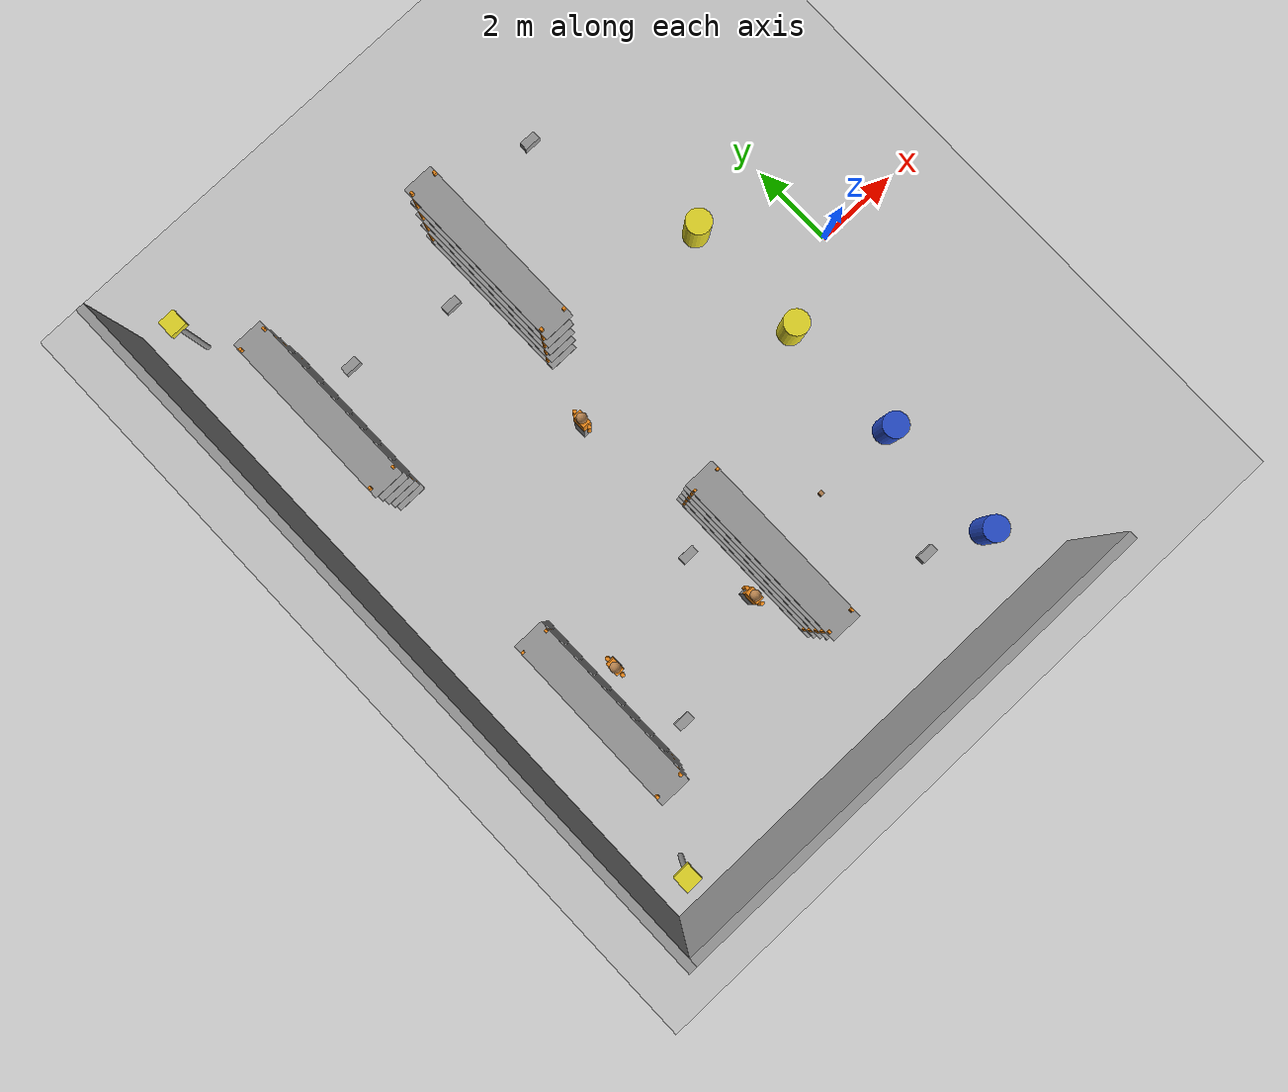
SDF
<sdf version="1.7">
 <world name="default">
  <model name="ground_plane">
   <static>1</static>
   <link name="link">
    <collision name="collision">
     <geometry><plane><normal>0 0 1</normal><size>100 100</size></plane></geometry>
     <surface><friction><ode><mu>100</mu><mu2>50</mu2></ode></friction></surface>
    </collision>
    <visual name="visual">
     <cast_shadows>0</cast_shadows>
     <geometry><plane><normal>0 0 1</normal><size>100 100</size></plane></geometry>
     <material>
      <script><uri>file://media/materials/scripts/gazebo.material</uri><name>Gazebo/Grey</name></script>
     </material>
    </visual>
   </link>
  </model>
  <model name="wood_cube_10cm">
   <link name="link">
    <pose>0 0 0.05 0 -0 0</pose>
    <inertial>
     <mass>0.5167</mass>
     <inertia>
      <ixx>0.000861167</ixx>
      <ixy>0</ixy>
      <ixz>0</ixz>
      <iyy>0.000861167</iyy>
      <iyz>0</iyz>
      <izz>0.000861167</izz>
     </inertia>
    </inertial>
    <collision name="collision">
     <geometry><box><size>0.1 0.1 0.1</size></box></geometry>
     <surface>
      <contact>
       <poissons_ratio>0.347</poissons_ratio>
       <elastic_modulus>8.8e+09</elastic_modulus>
       <ode><kp>100000</kp><kd>100</kd><max_vel>100</max_vel><min_depth>0.001</min_depth></ode>
      </contact>
      <friction>
       <torsional>
        <coefficient>1</coefficient>
        <use_patch_radius>0</use_patch_radius>
        <surface_radius>0.01</surface_radius>
       </torsional>
      </friction>
     </surface>
    </collision>
    <visual name="visual">
     <geometry><box><size>0.1 0.1 0.1</size></box></geometry>
     <material>
      <script><uri>file://media/materials/scripts/gazebo.material</uri><name>Gazebo/Wood</name></script>
     </material>
    </visual>
   </link>
   <pose>-4 -4 0.08 0 -0 0</pose>
  </model>
  <model name="wall_south_west">
   <static>1</static>
   <link name="link">
    <collision name="box_collision"><geometry><box><size>11.7 0.2 3</size></box></geometry></collision>
    <visual name="box_visual">
     <geometry><box><size>11.7 0.2 3</size></box></geometry>
     <material>
      <script><uri>file://media/materials/scripts/gazebo.material</uri><name>Gazebo/Grey</name></script>
     </material>
    </visual>
   </link>
   <pose>-6.65 -8.5 1.5 0 -0 0</pose>
  </model>
  <model name="wall_west">
   <static>1</static>
   <link name="link">
    <collision name="box_collision"><geometry><box><size>0.2 17.2 3</size></box></geometry></collision>
    <visual name="box_visual">
     <geometry><box><size>0.2 17.2 3</size></box></geometry>
     <material>
      <script><uri>file://media/materials/scripts/gazebo.material</uri><name>Gazebo/Grey</name></script>
     </material>
    </visual>
   </link>
   <pose>-12.5 0 1.5 0 -0 0</pose>
  </model>
  <model name="shelf_rack_a">
   <static>1</static>
   <link name="frame">
    <collision name="post0_collision">
     <geometry><box><size>0.06 0.06 3</size></box></geometry>
     <pose>-0.3 -1.85 1.5 0 -0 0</pose>
    </collision>
    <visual name="post0_visual">
     <geometry><box><size>0.06 0.06 3</size></box></geometry>
     <pose>-0.3 -1.85 1.5 0 -0 0</pose>
     <material>
      <script><uri>file://media/materials/scripts/gazebo.material</uri><name>Gazebo/Orange</name></script>
     </material>
    </visual>
    <collision name="post1_collision">
     <geometry><box><size>0.06 0.06 3</size></box></geometry>
     <pose>0.3 -1.85 1.5 0 -0 0</pose>
    </collision>
    <visual name="post1_visual">
     <geometry><box><size>0.06 0.06 3</size></box></geometry>
     <pose>0.3 -1.85 1.5 0 -0 0</pose>
     <material>
      <script><uri>file://media/materials/scripts/gazebo.material</uri><name>Gazebo/Orange</name></script>
     </material>
    </visual>
    <collision name="post2_collision">
     <geometry><box><size>0.06 0.06 3</size></box></geometry>
     <pose>-0.3 1.85 1.5 0 -0 0</pose>
    </collision>
    <visual name="post2_visual">
     <geometry><box><size>0.06 0.06 3</size></box></geometry>
     <pose>-0.3 1.85 1.5 0 -0 0</pose>
     <material>
      <script><uri>file://media/materials/scripts/gazebo.material</uri><name>Gazebo/Orange</name></script>
     </material>
    </visual>
    <collision name="post3_collision">
     <geometry><box><size>0.06 0.06 3</size></box></geometry>
     <pose>0.3 1.85 1.5 0 -0 0</pose>
    </collision>
    <visual name="post3_visual">
     <geometry><box><size>0.06 0.06 3</size></box></geometry>
     <pose>0.3 1.85 1.5 0 -0 0</pose>
     <material>
      <script><uri>file://media/materials/scripts/gazebo.material</uri><name>Gazebo/Orange</name></script>
     </material>
    </visual>
    <collision name="shelf0_collision">
     <geometry><box><size>0.7 4.1 0.03</size></box></geometry>
     <pose>0 0 0.05 0 -0 0</pose>
    </collision>
    <visual name="shelf0_visual">
     <geometry><box><size>0.7 4.1 0.03</size></box></geometry>
     <pose>0 0 0.05 0 -0 0</pose>
     <material>
      <script><uri>file://media/materials/scripts/gazebo.material</uri><name>Gazebo/Grey</name></script>
     </material>
    </visual>
    <collision name="shelf1_collision">
     <geometry><box><size>0.7 4.1 0.03</size></box></geometry>
     <pose>0 0 0.75 0 -0 0</pose>
    </collision>
    <visual name="shelf1_visual">
     <geometry><box><size>0.7 4.1 0.03</size></box></geometry>
     <pose>0 0 0.75 0 -0 0</pose>
     <material>
      <script><uri>file://media/materials/scripts/gazebo.material</uri><name>Gazebo/Grey</name></script>
     </material>
    </visual>
    <collision name="shelf2_collision">
     <geometry><box><size>0.7 4.1 0.03</size></box></geometry>
     <pose>0 0 1.45 0 -0 0</pose>
    </collision>
    <visual name="shelf2_visual">
     <geometry><box><size>0.7 4.1 0.03</size></box></geometry>
     <pose>0 0 1.45 0 -0 0</pose>
     <material>
      <script><uri>file://media/materials/scripts/gazebo.material</uri><name>Gazebo/Grey</name></script>
     </material>
    </visual>
    <collision name="shelf3_collision">
     <geometry><box><size>0.7 4.1 0.03</size></box></geometry>
     <pose>0 0 2.15 0 -0 0</pose>
    </collision>
    <visual name="shelf3_visual">
     <geometry><box><size>0.7 4.1 0.03</size></box></geometry>
     <pose>0 0 2.15 0 -0 0</pose>
     <material>
      <script><uri>file://media/materials/scripts/gazebo.material</uri><name>Gazebo/Grey</name></script>
     </material>
    </visual>
    <collision name="shelf4_collision">
     <geometry><box><size>0.7 4.1 0.03</size></box></geometry>
     <pose>0 0 2.85 0 -0 0</pose>
    </collision>
    <visual name="shelf4_visual">
     <geometry><box><size>0.7 4.1 0.03</size></box></geometry>
     <pose>0 0 2.85 0 -0 0</pose>
     <material>
      <script><uri>file://media/materials/scripts/gazebo.material</uri><name>Gazebo/Grey</name></script>
     </material>
    </visual>
   </link>
   <pose>-10.5 -4 0 0 -0 0</pose>
  </model>
  <model name="shelf_rack_b">
   <static>1</static>
   <link name="frame">
    <collision name="post0_collision">
     <geometry><box><size>0.06 0.06 3</size></box></geometry>
     <pose>-0.3 -1.85 1.5 0 -0 0</pose>
    </collision>
    <visual name="post0_visual">
     <geometry><box><size>0.06 0.06 3</size></box></geometry>
     <pose>-0.3 -1.85 1.5 0 -0 0</pose>
     <material>
      <script><uri>file://media/materials/scripts/gazebo.material</uri><name>Gazebo/Orange</name></script>
     </material>
    </visual>
    <collision name="post1_collision">
     <geometry><box><size>0.06 0.06 3</size></box></geometry>
     <pose>0.3 -1.85 1.5 0 -0 0</pose>
    </collision>
    <visual name="post1_visual">
     <geometry><box><size>0.06 0.06 3</size></box></geometry>
     <pose>0.3 -1.85 1.5 0 -0 0</pose>
     <material>
      <script><uri>file://media/materials/scripts/gazebo.material</uri><name>Gazebo/Orange</name></script>
     </material>
    </visual>
    <collision name="post2_collision">
     <geometry><box><size>0.06 0.06 3</size></box></geometry>
     <pose>-0.3 1.85 1.5 0 -0 0</pose>
    </collision>
    <visual name="post2_visual">
     <geometry><box><size>0.06 0.06 3</size></box></geometry>
     <pose>-0.3 1.85 1.5 0 -0 0</pose>
     <material>
      <script><uri>file://media/materials/scripts/gazebo.material</uri><name>Gazebo/Orange</name></script>
     </material>
    </visual>
    <collision name="post3_collision">
     <geometry><box><size>0.06 0.06 3</size></box></geometry>
     <pose>0.3 1.85 1.5 0 -0 0</pose>
    </collision>
    <visual name="post3_visual">
     <geometry><box><size>0.06 0.06 3</size></box></geometry>
     <pose>0.3 1.85 1.5 0 -0 0</pose>
     <material>
      <script><uri>file://media/materials/scripts/gazebo.material</uri><name>Gazebo/Orange</name></script>
     </material>
    </visual>
    <collision name="shelf0_collision">
     <geometry><box><size>0.7 4.1 0.03</size></box></geometry>
     <pose>0 0 0.05 0 -0 0</pose>
    </collision>
    <visual name="shelf0_visual">
     <geometry><box><size>0.7 4.1 0.03</size></box></geometry>
     <pose>0 0 0.05 0 -0 0</pose>
     <material>
      <script><uri>file://media/materials/scripts/gazebo.material</uri><name>Gazebo/Grey</name></script>
     </material>
    </visual>
    <collision name="shelf1_collision">
     <geometry><box><size>0.7 4.1 0.03</size></box></geometry>
     <pose>0 0 0.75 0 -0 0</pose>
    </collision>
    <visual name="shelf1_visual">
     <geometry><box><size>0.7 4.1 0.03</size></box></geometry>
     <pose>0 0 0.75 0 -0 0</pose>
     <material>
      <script><uri>file://media/materials/scripts/gazebo.material</uri><name>Gazebo/Grey</name></script>
     </material>
    </visual>
    <collision name="shelf2_collision">
     <geometry><box><size>0.7 4.1 0.03</size></box></geometry>
     <pose>0 0 1.45 0 -0 0</pose>
    </collision>
    <visual name="shelf2_visual">
     <geometry><box><size>0.7 4.1 0.03</size></box></geometry>
     <pose>0 0 1.45 0 -0 0</pose>
     <material>
      <script><uri>file://media/materials/scripts/gazebo.material</uri><name>Gazebo/Grey</name></script>
     </material>
    </visual>
    <collision name="shelf3_collision">
     <geometry><box><size>0.7 4.1 0.03</size></box></geometry>
     <pose>0 0 2.15 0 -0 0</pose>
    </collision>
    <visual name="shelf3_visual">
     <geometry><box><size>0.7 4.1 0.03</size></box></geometry>
     <pose>0 0 2.15 0 -0 0</pose>
     <material>
      <script><uri>file://media/materials/scripts/gazebo.material</uri><name>Gazebo/Grey</name></script>
     </material>
    </visual>
    <collision name="shelf4_collision">
     <geometry><box><size>0.7 4.1 0.03</size></box></geometry>
     <pose>0 0 2.85 0 -0 0</pose>
    </collision>
    <visual name="shelf4_visual">
     <geometry><box><size>0.7 4.1 0.03</size></box></geometry>
     <pose>0 0 2.85 0 -0 0</pose>
     <material>
      <script><uri>file://media/materials/scripts/gazebo.material</uri><name>Gazebo/Grey</name></script>
     </material>
    </visual>
   </link>
   <pose>-10.5 4 0 0 -0 0</pose>
  </model>
  <model name="shelf_rack_c">
   <static>1</static>
   <link name="frame">
    <collision name="post0_collision">
     <geometry><box><size>0.06 0.06 3</size></box></geometry>
     <pose>-0.3 -1.85 1.5 0 -0 0</pose>
    </collision>
    <visual name="post0_visual">
     <geometry><box><size>0.06 0.06 3</size></box></geometry>
     <pose>-0.3 -1.85 1.5 0 -0 0</pose>
     <material>
      <script><uri>file://media/materials/scripts/gazebo.material</uri><name>Gazebo/Orange</name></script>
     </material>
    </visual>
    <collision name="post1_collision">
     <geometry><box><size>0.06 0.06 3</size></box></geometry>
     <pose>0.3 -1.85 1.5 0 -0 0</pose>
    </collision>
    <visual name="post1_visual">
     <geometry><box><size>0.06 0.06 3</size></box></geometry>
     <pose>0.3 -1.85 1.5 0 -0 0</pose>
     <material>
      <script><uri>file://media/materials/scripts/gazebo.material</uri><name>Gazebo/Orange</name></script>
     </material>
    </visual>
    <collision name="post2_collision">
     <geometry><box><size>0.06 0.06 3</size></box></geometry>
     <pose>-0.3 1.85 1.5 0 -0 0</pose>
    </collision>
    <visual name="post2_visual">
     <geometry><box><size>0.06 0.06 3</size></box></geometry>
     <pose>-0.3 1.85 1.5 0 -0 0</pose>
     <material>
      <script><uri>file://media/materials/scripts/gazebo.material</uri><name>Gazebo/Orange</name></script>
     </material>
    </visual>
    <collision name="post3_collision">
     <geometry><box><size>0.06 0.06 3</size></box></geometry>
     <pose>0.3 1.85 1.5 0 -0 0</pose>
    </collision>
    <visual name="post3_visual">
     <geometry><box><size>0.06 0.06 3</size></box></geometry>
     <pose>0.3 1.85 1.5 0 -0 0</pose>
     <material>
      <script><uri>file://media/materials/scripts/gazebo.material</uri><name>Gazebo/Orange</name></script>
     </material>
    </visual>
    <collision name="shelf0_collision">
     <geometry><box><size>0.7 4.1 0.03</size></box></geometry>
     <pose>0 0 0.05 0 -0 0</pose>
    </collision>
    <visual name="shelf0_visual">
     <geometry><box><size>0.7 4.1 0.03</size></box></geometry>
     <pose>0 0 0.05 0 -0 0</pose>
     <material>
      <script><uri>file://media/materials/scripts/gazebo.material</uri><name>Gazebo/Grey</name></script>
     </material>
    </visual>
    <collision name="shelf1_collision">
     <geometry><box><size>0.7 4.1 0.03</size></box></geometry>
     <pose>0 0 0.75 0 -0 0</pose>
    </collision>
    <visual name="shelf1_visual">
     <geometry><box><size>0.7 4.1 0.03</size></box></geometry>
     <pose>0 0 0.75 0 -0 0</pose>
     <material>
      <script><uri>file://media/materials/scripts/gazebo.material</uri><name>Gazebo/Grey</name></script>
     </material>
    </visual>
    <collision name="shelf2_collision">
     <geometry><box><size>0.7 4.1 0.03</size></box></geometry>
     <pose>0 0 1.45 0 -0 0</pose>
    </collision>
    <visual name="shelf2_visual">
     <geometry><box><size>0.7 4.1 0.03</size></box></geometry>
     <pose>0 0 1.45 0 -0 0</pose>
     <material>
      <script><uri>file://media/materials/scripts/gazebo.material</uri><name>Gazebo/Grey</name></script>
     </material>
    </visual>
    <collision name="shelf3_collision">
     <geometry><box><size>0.7 4.1 0.03</size></box></geometry>
     <pose>0 0 2.15 0 -0 0</pose>
    </collision>
    <visual name="shelf3_visual">
     <geometry><box><size>0.7 4.1 0.03</size></box></geometry>
     <pose>0 0 2.15 0 -0 0</pose>
     <material>
      <script><uri>file://media/materials/scripts/gazebo.material</uri><name>Gazebo/Grey</name></script>
     </material>
    </visual>
    <collision name="shelf4_collision">
     <geometry><box><size>0.7 4.1 0.03</size></box></geometry>
     <pose>0 0 2.85 0 -0 0</pose>
    </collision>
    <visual name="shelf4_visual">
     <geometry><box><size>0.7 4.1 0.03</size></box></geometry>
     <pose>0 0 2.85 0 -0 0</pose>
     <material>
      <script><uri>file://media/materials/scripts/gazebo.material</uri><name>Gazebo/Grey</name></script>
     </material>
    </visual>
   </link>
   <pose>-6 -4 0 0 -0 0</pose>
  </model>
  <model name="shelf_rack_d">
   <static>1</static>
   <link name="frame">
    <collision name="post0_collision">
     <geometry><box><size>0.06 0.06 3</size></box></geometry>
     <pose>-0.3 -1.85 1.5 0 -0 0</pose>
    </collision>
    <visual name="post0_visual">
     <geometry><box><size>0.06 0.06 3</size></box></geometry>
     <pose>-0.3 -1.85 1.5 0 -0 0</pose>
     <material>
      <script><uri>file://media/materials/scripts/gazebo.material</uri><name>Gazebo/Orange</name></script>
     </material>
    </visual>
    <collision name="post1_collision">
     <geometry><box><size>0.06 0.06 3</size></box></geometry>
     <pose>0.3 -1.85 1.5 0 -0 0</pose>
    </collision>
    <visual name="post1_visual">
     <geometry><box><size>0.06 0.06 3</size></box></geometry>
     <pose>0.3 -1.85 1.5 0 -0 0</pose>
     <material>
      <script><uri>file://media/materials/scripts/gazebo.material</uri><name>Gazebo/Orange</name></script>
     </material>
    </visual>
    <collision name="post2_collision">
     <geometry><box><size>0.06 0.06 3</size></box></geometry>
     <pose>-0.3 1.85 1.5 0 -0 0</pose>
    </collision>
    <visual name="post2_visual">
     <geometry><box><size>0.06 0.06 3</size></box></geometry>
     <pose>-0.3 1.85 1.5 0 -0 0</pose>
     <material>
      <script><uri>file://media/materials/scripts/gazebo.material</uri><name>Gazebo/Orange</name></script>
     </material>
    </visual>
    <collision name="post3_collision">
     <geometry><box><size>0.06 0.06 3</size></box></geometry>
     <pose>0.3 1.85 1.5 0 -0 0</pose>
    </collision>
    <visual name="post3_visual">
     <geometry><box><size>0.06 0.06 3</size></box></geometry>
     <pose>0.3 1.85 1.5 0 -0 0</pose>
     <material>
      <script><uri>file://media/materials/scripts/gazebo.material</uri><name>Gazebo/Orange</name></script>
     </material>
    </visual>
    <collision name="shelf0_collision">
     <geometry><box><size>0.7 4.1 0.03</size></box></geometry>
     <pose>0 0 0.05 0 -0 0</pose>
    </collision>
    <visual name="shelf0_visual">
     <geometry><box><size>0.7 4.1 0.03</size></box></geometry>
     <pose>0 0 0.05 0 -0 0</pose>
     <material>
      <script><uri>file://media/materials/scripts/gazebo.material</uri><name>Gazebo/Grey</name></script>
     </material>
    </visual>
    <collision name="shelf1_collision">
     <geometry><box><size>0.7 4.1 0.03</size></box></geometry>
     <pose>0 0 0.75 0 -0 0</pose>
    </collision>
    <visual name="shelf1_visual">
     <geometry><box><size>0.7 4.1 0.03</size></box></geometry>
     <pose>0 0 0.75 0 -0 0</pose>
     <material>
      <script><uri>file://media/materials/scripts/gazebo.material</uri><name>Gazebo/Grey</name></script>
     </material>
    </visual>
    <collision name="shelf2_collision">
     <geometry><box><size>0.7 4.1 0.03</size></box></geometry>
     <pose>0 0 1.45 0 -0 0</pose>
    </collision>
    <visual name="shelf2_visual">
     <geometry><box><size>0.7 4.1 0.03</size></box></geometry>
     <pose>0 0 1.45 0 -0 0</pose>
     <material>
      <script><uri>file://media/materials/scripts/gazebo.material</uri><name>Gazebo/Grey</name></script>
     </material>
    </visual>
    <collision name="shelf3_collision">
     <geometry><box><size>0.7 4.1 0.03</size></box></geometry>
     <pose>0 0 2.15 0 -0 0</pose>
    </collision>
    <visual name="shelf3_visual">
     <geometry><box><size>0.7 4.1 0.03</size></box></geometry>
     <pose>0 0 2.15 0 -0 0</pose>
     <material>
      <script><uri>file://media/materials/scripts/gazebo.material</uri><name>Gazebo/Grey</name></script>
     </material>
    </visual>
    <collision name="shelf4_collision">
     <geometry><box><size>0.7 4.1 0.03</size></box></geometry>
     <pose>0 0 2.85 0 -0 0</pose>
    </collision>
    <visual name="shelf4_visual">
     <geometry><box><size>0.7 4.1 0.03</size></box></geometry>
     <pose>0 0 2.85 0 -0 0</pose>
     <material>
      <script><uri>file://media/materials/scripts/gazebo.material</uri><name>Gazebo/Grey</name></script>
     </material>
    </visual>
   </link>
   <pose>-6 4 0 0 -0 0</pose>
  </model>
  <model name="wood_cube_rack_a">
   <link name="link">
    <pose>0 0 0.05 0 -0 0</pose>
    <inertial>
     <mass>0.5167</mass>
     <inertia>
      <ixx>0.000861167</ixx>
      <ixy>0</ixy>
      <ixz>0</ixz>
      <iyy>0.000861167</iyy>
      <iyz>0</iyz>
      <izz>0.000861167</izz>
     </inertia>
    </inertial>
    <collision name="collision">
     <geometry><box><size>0.1 0.1 0.1</size></box></geometry>
     <surface>
      <contact>
       <poissons_ratio>0.347</poissons_ratio>
       <elastic_modulus>8.8e+09</elastic_modulus>
       <ode><kp>100000</kp><kd>100</kd><max_vel>100</max_vel><min_depth>0.001</min_depth></ode>
      </contact>
      <friction>
       <torsional>
        <coefficient>1</coefficient>
        <use_patch_radius>0</use_patch_radius>
        <surface_radius>0.01</surface_radius>
       </torsional>
      </friction>
     </surface>
    </collision>
    <visual name="visual">
     <geometry><box><size>0.1 0.1 0.1</size></box></geometry>
     <material>
      <script><uri>file://media/materials/scripts/gazebo.material</uri><name>Gazebo/Wood</name></script>
     </material>
    </visual>
   </link>
   <pose>-10.5 -4.75 0.115 0 -0 0</pose>
  </model>
  <model name="wood_cube_rack_b">
   <link name="link">
    <pose>0 0 0.05 0 -0 0</pose>
    <inertial>
     <mass>0.5167</mass>
     <inertia>
      <ixx>0.000861167</ixx>
      <ixy>0</ixy>
      <ixz>0</ixz>
      <iyy>0.000861167</iyy>
      <iyz>0</iyz>
      <izz>0.000861167</izz>
     </inertia>
    </inertial>
    <collision name="collision">
     <geometry><box><size>0.1 0.1 0.1</size></box></geometry>
     <surface>
      <contact>
       <poissons_ratio>0.347</poissons_ratio>
       <elastic_modulus>8.8e+09</elastic_modulus>
       <ode><kp>100000</kp><kd>100</kd><max_vel>100</max_vel><min_depth>0.001</min_depth></ode>
      </contact>
      <friction>
       <torsional>
        <coefficient>1</coefficient>
        <use_patch_radius>0</use_patch_radius>
        <surface_radius>0.01</surface_radius>
       </torsional>
      </friction>
     </surface>
    </collision>
    <visual name="visual">
     <geometry><box><size>0.1 0.1 0.1</size></box></geometry>
     <material>
      <script><uri>file://media/materials/scripts/gazebo.material</uri><name>Gazebo/Wood</name></script>
     </material>
    </visual>
   </link>
   <pose>-10.5 4.75 0.115 0 -0 0</pose>
  </model>
  <model name="wood_cube_rack_c">
   <link name="link">
    <pose>0 0 0.05 0 -0 0</pose>
    <inertial>
     <mass>0.5167</mass>
     <inertia>
      <ixx>0.000861167</ixx>
      <ixy>0</ixy>
      <ixz>0</ixz>
      <iyy>0.000861167</iyy>
      <iyz>0</iyz>
      <izz>0.000861167</izz>
     </inertia>
    </inertial>
    <collision name="collision">
     <geometry><box><size>0.1 0.1 0.1</size></box></geometry>
     <surface>
      <contact>
       <poissons_ratio>0.347</poissons_ratio>
       <elastic_modulus>8.8e+09</elastic_modulus>
       <ode><kp>100000</kp><kd>100</kd><max_vel>100</max_vel><min_depth>0.001</min_depth></ode>
      </contact>
      <friction>
       <torsional>
        <coefficient>1</coefficient>
        <use_patch_radius>0</use_patch_radius>
        <surface_radius>0.01</surface_radius>
       </torsional>
      </friction>
     </surface>
    </collision>
    <visual name="visual">
     <geometry><box><size>0.1 0.1 0.1</size></box></geometry>
     <material>
      <script><uri>file://media/materials/scripts/gazebo.material</uri><name>Gazebo/Wood</name></script>
     </material>
    </visual>
   </link>
   <pose>-6 -4.75 0.115 0 -0 0</pose>
  </model>
  <model name="wood_cube_rack_d">
   <link name="link">
    <pose>0 0 0.05 0 -0 0</pose>
    <inertial>
     <mass>0.5167</mass>
     <inertia>
      <ixx>0.000861167</ixx>
      <ixy>0</ixy>
      <ixz>0</ixz>
      <iyy>0.000861167</iyy>
      <iyz>0</iyz>
      <izz>0.000861167</izz>
     </inertia>
    </inertial>
    <collision name="collision">
     <geometry><box><size>0.1 0.1 0.1</size></box></geometry>
     <surface>
      <contact>
       <poissons_ratio>0.347</poissons_ratio>
       <elastic_modulus>8.8e+09</elastic_modulus>
       <ode><kp>100000</kp><kd>100</kd><max_vel>100</max_vel><min_depth>0.001</min_depth></ode>
      </contact>
      <friction>
       <torsional>
        <coefficient>1</coefficient>
        <use_patch_radius>0</use_patch_radius>
        <surface_radius>0.01</surface_radius>
       </torsional>
      </friction>
     </surface>
    </collision>
    <visual name="visual">
     <geometry><box><size>0.1 0.1 0.1</size></box></geometry>
     <material>
      <script><uri>file://media/materials/scripts/gazebo.material</uri><name>Gazebo/Wood</name></script>
     </material>
    </visual>
   </link>
   <pose>-6 4.75 0.115 0 -0 0</pose>
  </model>
  <model name="barrel_0">
   <static>1</static>
   <link name="link">
    <collision name="cyl_collision">
     <geometry><cylinder><radius>0.3</radius><length>0.9</length></cylinder></geometry>
    </collision>
    <visual name="cyl_visual">
     <geometry><cylinder><radius>0.3</radius><length>0.9</length></cylinder></geometry>
     <material>
      <script><uri>file://media/materials/scripts/gazebo.material</uri><name>Gazebo/Blue</name></script>
     </material>
    </visual>
   </link>
   <pose>-2 -7 0.45 0 -0 0</pose>
  </model>
  <model name="barrel_1">
   <static>1</static>
   <link name="link">
    <collision name="cyl_collision">
     <geometry><cylinder><radius>0.3</radius><length>0.9</length></cylinder></geometry>
    </collision>
    <visual name="cyl_visual">
     <geometry><cylinder><radius>0.3</radius><length>0.9</length></cylinder></geometry>
     <material>
      <script><uri>file://media/materials/scripts/gazebo.material</uri><name>Gazebo/Blue</name></script>
     </material>
    </visual>
   </link>
   <pose>-2 -4 0.45 0 -0 0</pose>
  </model>
  <model name="barrel_2">
   <static>1</static>
   <link name="link">
    <collision name="cyl_collision">
     <geometry><cylinder><radius>0.3</radius><length>0.9</length></cylinder></geometry>
    </collision>
    <visual name="cyl_visual">
     <geometry><cylinder><radius>0.3</radius><length>0.9</length></cylinder></geometry>
     <material>
      <script><uri>file://media/materials/scripts/gazebo.material</uri><name>Gazebo/Yellow</name></script>
     </material>
    </visual>
   </link>
   <pose>-2 -1 0.45 0 -0 0</pose>
  </model>
  <model name="barrel_3">
   <static>1</static>
   <link name="link">
    <collision name="cyl_collision">
     <geometry><cylinder><radius>0.3</radius><length>0.9</length></cylinder></geometry>
    </collision>
    <visual name="cyl_visual">
     <geometry><cylinder><radius>0.3</radius><length>0.9</length></cylinder></geometry>
     <material>
      <script><uri>file://media/materials/scripts/gazebo.material</uri><name>Gazebo/Yellow</name></script>
     </material>
    </visual>
   </link>
   <pose>-2 2 0.45 0 -0 0</pose>
  </model>
  <model name="cinder_0">
   <static>1</static>
   <link name="link">
    <collision name="box_collision"><geometry><box><size>0.4 0.2 0.2</size></box></geometry></collision>
    <visual name="box_visual">
     <geometry><box><size>0.4 0.2 0.2</size></box></geometry>
     <material>
      <script><uri>file://media/materials/scripts/gazebo.material</uri><name>Gazebo/Grey</name></script>
     </material>
    </visual>
   </link>
   <pose>-9.5 -5.5 0.1 0 -0 0</pose>
  </model>
  <model name="cinder_1">
   <static>1</static>
   <link name="link">
    <collision name="box_collision"><geometry><box><size>0.4 0.2 0.2</size></box></geometry></collision>
    <visual name="box_visual">
     <geometry><box><size>0.4 0.2 0.2</size></box></geometry>
     <material>
      <script><uri>file://media/materials/scripts/gazebo.material</uri><name>Gazebo/Grey</name></script>
     </material>
    </visual>
   </link>
   <pose>-9.5 5 0.1 0 -0 0</pose>
  </model>
  <model name="cinder_2">
   <static>1</static>
   <link name="link">
    <collision name="box_collision"><geometry><box><size>0.4 0.2 0.2</size></box></geometry></collision>
    <visual name="box_visual">
     <geometry><box><size>0.4 0.2 0.2</size></box></geometry>
     <material>
      <script><uri>file://media/materials/scripts/gazebo.material</uri><name>Gazebo/Grey</name></script>
     </material>
    </visual>
   </link>
   <pose>-7 -3 0.1 0 -0 0</pose>
  </model>
  <model name="cinder_3">
   <static>1</static>
   <link name="link">
    <collision name="box_collision"><geometry><box><size>0.4 0.2 0.2</size></box></geometry></collision>
    <visual name="box_visual">
     <geometry><box><size>0.4 0.2 0.2</size></box></geometry>
     <material>
      <script><uri>file://media/materials/scripts/gazebo.material</uri><name>Gazebo/Grey</name></script>
     </material>
    </visual>
   </link>
   <pose>-7 4.5 0.1 0 -0 0</pose>
  </model>
  <model name="cinder_4">
   <static>1</static>
   <link name="link">
    <collision name="box_collision"><geometry><box><size>0.4 0.2 0.2</size></box></geometry></collision>
    <visual name="box_visual">
     <geometry><box><size>0.4 0.2 0.2</size></box></geometry>
     <material>
      <script><uri>file://media/materials/scripts/gazebo.material</uri><name>Gazebo/Grey</name></script>
     </material>
    </visual>
   </link>
   <pose>-3.25 -6.5 0.1 0 -0 0</pose>
  </model>
  <model name="cinder_5">
   <static>1</static>
   <link name="link">
    <collision name="box_collision"><geometry><box><size>0.4 0.2 0.2</size></box></geometry></collision>
    <visual name="box_visual">
     <geometry><box><size>0.4 0.2 0.2</size></box></geometry>
     <material>
      <script><uri>file://media/materials/scripts/gazebo.material</uri><name>Gazebo/Grey</name></script>
     </material>
    </visual>
   </link>
   <pose>-3.25 6 0.1 0 -0 0</pose>
  </model>
  <model name="lamp_0">
   <static>1</static>
   <link name="link">
    <collision name="pole_collision">
     <geometry><cylinder><radius>0.06</radius><length>2</length></cylinder></geometry>
     <pose>0 0 1 0 -0 0</pose>
    </collision>
    <visual name="pole_visual">
     <geometry><cylinder><radius>0.06</radius><length>2</length></cylinder></geometry>
     <pose>0 0 1 0 -0 0</pose>
     <material>
      <script><uri>file://media/materials/scripts/gazebo.material</uri><name>Gazebo/Grey</name></script>
     </material>
    </visual>
    <collision name="head_collision">
     <geometry><box><size>0.4 0.4 0.15</size></box></geometry>
     <pose>0 0 2.075 0 -0 0</pose>
    </collision>
    <visual name="head_visual">
     <geometry><box><size>0.4 0.4 0.15</size></box></geometry>
     <pose>0 0 2.075 0 -0 0</pose>
     <material>
      <script><uri>file://media/materials/scripts/gazebo.material</uri><name>Gazebo/Yellow</name></script>
     </material>
    </visual>
   </link>
   <pose>-11.5 -7.5 0 0 -0 0</pose>
  </model>
  <model name="lamp_1">
   <static>1</static>
   <link name="link">
    <collision name="pole_collision">
     <geometry><cylinder><radius>0.06</radius><length>2</length></cylinder></geometry>
     <pose>0 0 1 0 -0 0</pose>
    </collision>
    <visual name="pole_visual">
     <geometry><cylinder><radius>0.06</radius><length>2</length></cylinder></geometry>
     <pose>0 0 1 0 -0 0</pose>
     <material>
      <script><uri>file://media/materials/scripts/gazebo.material</uri><name>Gazebo/Grey</name></script>
     </material>
    </visual>
    <collision name="head_collision">
     <geometry><box><size>0.4 0.4 0.15</size></box></geometry>
     <pose>0 0 2.075 0 -0 0</pose>
    </collision>
    <visual name="head_visual">
     <geometry><box><size>0.4 0.4 0.15</size></box></geometry>
     <pose>0 0 2.075 0 -0 0</pose>
     <material>
      <script><uri>file://media/materials/scripts/gazebo.material</uri><name>Gazebo/Yellow</name></script>
     </material>
    </visual>
   </link>
   <pose>-11.5 7.5 0 0 -0 0</pose>
  </model>
  <model name="worker_conveyor_2_clone_clone">
   <static>1</static>
   <link name="link">
    <collision name="legs_collision">
     <geometry><box><size>0.3 0.18 0.9</size></box></geometry>
     <pose>0 0 0.45 0 -0 0</pose>
    </collision>
    <visual name="legs_visual">
     <geometry><box><size>0.3 0.18 0.9</size></box></geometry>
     <pose>0 0 0.45 0 -0 0</pose>
     <material>
      <script><uri>file://media/materials/scripts/gazebo.material</uri><name>Gazebo/Grey</name></script>
     </material>
    </visual>
    <collision name="torso_collision">
     <geometry><box><size>0.32 0.2 0.55</size></box></geometry>
     <pose>0 0 1.175 0 -0 0</pose>
    </collision>
    <visual name="torso_visual">
     <geometry><box><size>0.32 0.2 0.55</size></box></geometry>
     <pose>0 0 1.175 0 -0 0</pose>
     <material>
      <script><uri>file://media/materials/scripts/gazebo.material</uri><name>Gazebo/Orange</name></script>
     </material>
    </visual>
    <collision name="arm_l_collision">
     <geometry><cylinder><radius>0.045</radius><length>0.5</length></cylinder></geometry>
     <pose>0.22 0 1.175 0 -0 0</pose>
    </collision>
    <visual name="arm_l_visual">
     <geometry><cylinder><radius>0.045</radius><length>0.5</length></cylinder></geometry>
     <pose>0.22 0 1.175 0 -0 0</pose>
     <material>
      <script><uri>file://media/materials/scripts/gazebo.material</uri><name>Gazebo/Orange</name></script>
     </material>
    </visual>
    <collision name="arm_r_collision">
     <geometry><cylinder><radius>0.045</radius><length>0.5</length></cylinder></geometry>
     <pose>-0.22 0 1.175 0 -0 0</pose>
    </collision>
    <visual name="arm_r_visual">
     <geometry><cylinder><radius>0.045</radius><length>0.5</length></cylinder></geometry>
     <pose>-0.22 0 1.175 0 -0 0</pose>
     <material>
      <script><uri>file://media/materials/scripts/gazebo.material</uri><name>Gazebo/Orange</name></script>
     </material>
    </visual>
    <collision name="head_collision">
     <geometry><sphere><radius>0.12</radius></sphere></geometry>
     <pose>0 0 1.57 0 -0 0</pose>
    </collision>
    <visual name="head_visual">
     <geometry><sphere><radius>0.12</radius></sphere></geometry>
     <pose>0 0 1.57 0 -0 0</pose>
     <material>
      <script><uri>file://media/materials/scripts/gazebo.material</uri><name>Gazebo/Wood</name></script>
     </material>
    </visual>
   </link>
   <pose>-6.69752 -4.50466 0 0 -0 1.5708</pose>
  </model>
  <model name="worker_conveyor_2_clone_clone_0">
   <static>1</static>
   <link name="link">
    <collision name="legs_collision">
     <geometry><box><size>0.3 0.18 0.9</size></box></geometry>
     <pose>0 0 0.45 0 -0 0</pose>
    </collision>
    <visual name="legs_visual">
     <geometry><box><size>0.3 0.18 0.9</size></box></geometry>
     <pose>0 0 0.45 0 -0 0</pose>
     <material>
      <script><uri>file://media/materials/scripts/gazebo.material</uri><name>Gazebo/Grey</name></script>
     </material>
    </visual>
    <collision name="torso_collision">
     <geometry><box><size>0.32 0.2 0.55</size></box></geometry>
     <pose>0 0 1.175 0 -0 0</pose>
    </collision>
    <visual name="torso_visual">
     <geometry><box><size>0.32 0.2 0.55</size></box></geometry>
     <pose>0 0 1.175 0 -0 0</pose>
     <material>
      <script><uri>file://media/materials/scripts/gazebo.material</uri><name>Gazebo/Orange</name></script>
     </material>
    </visual>
    <collision name="arm_l_collision">
     <geometry><cylinder><radius>0.045</radius><length>0.5</length></cylinder></geometry>
     <pose>0.22 0 1.175 0 -0 0</pose>
    </collision>
    <visual name="arm_l_visual">
     <geometry><cylinder><radius>0.045</radius><length>0.5</length></cylinder></geometry>
     <pose>0.22 0 1.175 0 -0 0</pose>
     <material>
      <script><uri>file://media/materials/scripts/gazebo.material</uri><name>Gazebo/Orange</name></script>
     </material>
    </visual>
    <collision name="arm_r_collision">
     <geometry><cylinder><radius>0.045</radius><length>0.5</length></cylinder></geometry>
     <pose>-0.22 0 1.175 0 -0 0</pose>
    </collision>
    <visual name="arm_r_visual">
     <geometry><cylinder><radius>0.045</radius><length>0.5</length></cylinder></geometry>
     <pose>-0.22 0 1.175 0 -0 0</pose>
     <material>
      <script><uri>file://media/materials/scripts/gazebo.material</uri><name>Gazebo/Orange</name></script>
     </material>
    </visual>
    <collision name="head_collision">
     <geometry><sphere><radius>0.12</radius></sphere></geometry>
     <pose>0 0 1.57 0 -0 0</pose>
    </collision>
    <visual name="head_visual">
     <geometry><sphere><radius>0.12</radius></sphere></geometry>
     <pose>0 0 1.57 0 -0 0</pose>
     <material>
      <script><uri>file://media/materials/scripts/gazebo.material</uri><name>Gazebo/Wood</name></script>
     </material>
    </visual>
   </link>
   <pose>-9.75306 -3.61009 0 0 -0 1.5708</pose>
  </model>
  <model name="worker_conveyor_2_clone_clone_1">
   <static>1</static>
   <link name="link">
    <collision name="legs_collision">
     <geometry><box><size>0.3 0.18 0.9</size></box></geometry>
     <pose>0 0 0.45 0 -0 0</pose>
    </collision>
    <visual name="legs_visual">
     <geometry><box><size>0.3 0.18 0.9</size></box></geometry>
     <pose>0 0 0.45 0 -0 0</pose>
     <material>
      <script><uri>file://media/materials/scripts/gazebo.material</uri><name>Gazebo/Grey</name></script>
     </material>
    </visual>
    <collision name="torso_collision">
     <geometry><box><size>0.32 0.2 0.55</size></box></geometry>
     <pose>0 0 1.175 0 -0 0</pose>
    </collision>
    <visual name="torso_visual">
     <geometry><box><size>0.32 0.2 0.55</size></box></geometry>
     <pose>0 0 1.175 0 -0 0</pose>
     <material>
      <script><uri>file://media/materials/scripts/gazebo.material</uri><name>Gazebo/Orange</name></script>
     </material>
    </visual>
    <collision name="arm_l_collision">
     <geometry><cylinder><radius>0.045</radius><length>0.5</length></cylinder></geometry>
     <pose>0.22 0 1.175 0 -0 0</pose>
    </collision>
    <visual name="arm_l_visual">
     <geometry><cylinder><radius>0.045</radius><length>0.5</length></cylinder></geometry>
     <pose>0.22 0 1.175 0 -0 0</pose>
     <material>
      <script><uri>file://media/materials/scripts/gazebo.material</uri><name>Gazebo/Orange</name></script>
     </material>
    </visual>
    <collision name="arm_r_collision">
     <geometry><cylinder><radius>0.045</radius><length>0.5</length></cylinder></geometry>
     <pose>-0.22 0 1.175 0 -0 0</pose>
    </collision>
    <visual name="arm_r_visual">
     <geometry><cylinder><radius>0.045</radius><length>0.5</length></cylinder></geometry>
     <pose>-0.22 0 1.175 0 -0 0</pose>
     <material>
      <script><uri>file://media/materials/scripts/gazebo.material</uri><name>Gazebo/Orange</name></script>
     </material>
    </visual>
    <collision name="head_collision">
     <geometry><sphere><radius>0.12</radius></sphere></geometry>
     <pose>0 0 1.57 0 -0 0</pose>
    </collision>
    <visual name="head_visual">
     <geometry><sphere><radius>0.12</radius></sphere></geometry>
     <pose>0 0 1.57 0 -0 0</pose>
     <material>
      <script><uri>file://media/materials/scripts/gazebo.material</uri><name>Gazebo/Wood</name></script>
     </material>
    </visual>
   </link>
   <pose>-6.77653 0.539317 0 0 -0 1.5708</pose>
  </model>
 </world>
</sdf>
